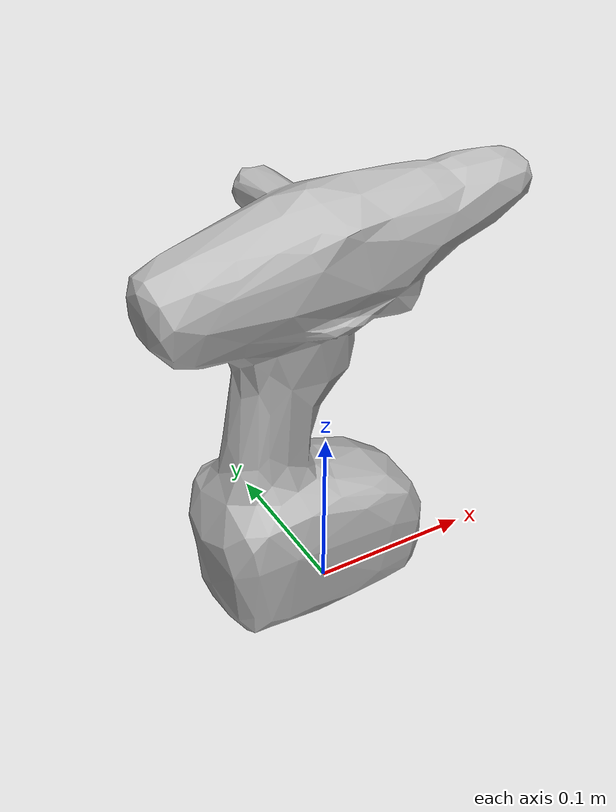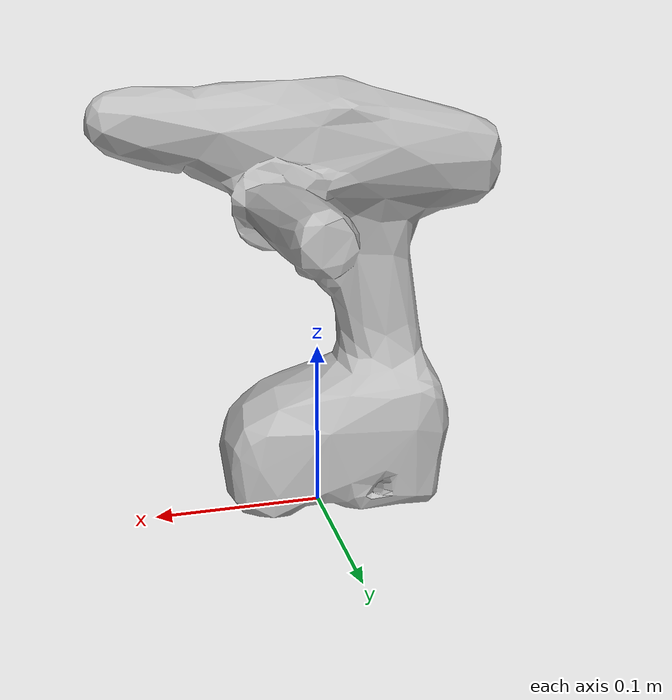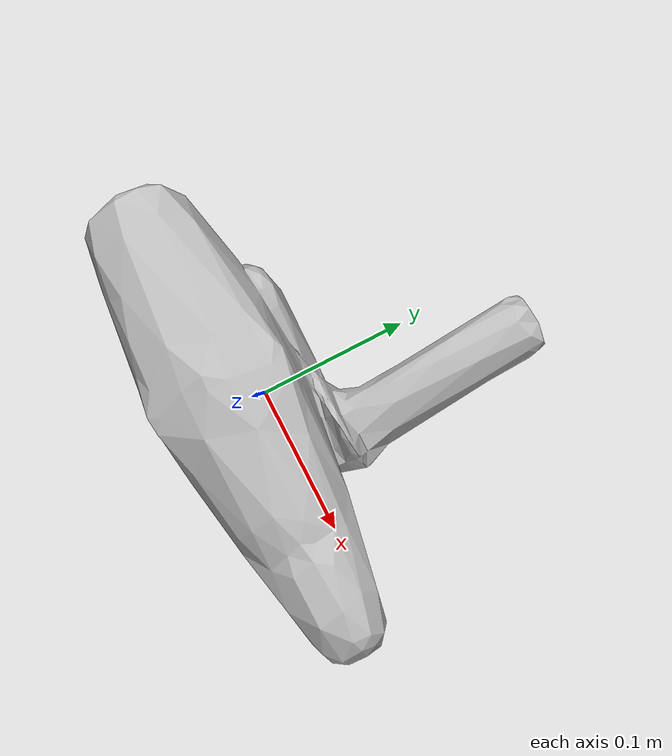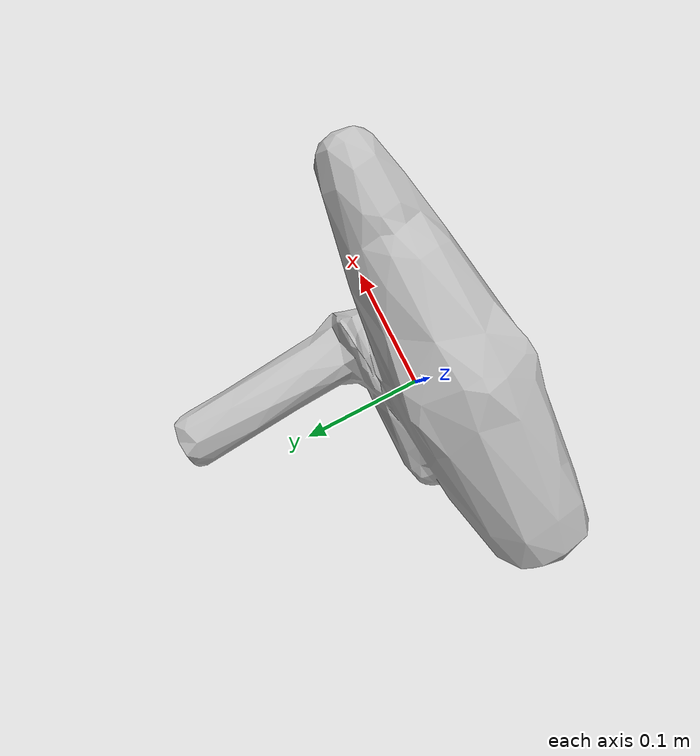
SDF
<?xml version="1.0" ?>
<sdf version="1.5">
  <world name="drill">
  <model name="drill">
    <link name="drill">
      <inertial>
        <pose>-0.00637 -0.008 0.13254 0 0 0</pose>
        <inertia>
          <!-- Before rotation -90 -->
          <iyy>0.01331127</iyy>
          <ixy>0.00030365</ixy>
          <iyz>0.00034148</iyz>
          <ixx>0.01157659</ixx>
          <ixz>-0.00088073</ixz>
          <izz>0.00378028</izz>
        </inertia>
        <mass>0.2</mass>
      </inertial>
      <collision name="collision">
        <pose>0 0 -0.09 0 0 -1.570796</pose>
        <geometry>
          <mesh>
            <uri>meshes/cordless_drill.stl</uri>
          </mesh>
        </geometry>
        <surface>
          <contact>
            <ode>
              <max_vel>0.1</max_vel>
              <min_depth>0.001</min_depth>
            </ode>
          </contact>
        </surface>
      </collision>
      <visual name="visual">
        <pose>0 0 -0.09 0 0 -1.570796</pose>
        <geometry>
          <mesh>
            <uri>meshes/cordless_drill.dae</uri>
          </mesh>
        </geometry>
      </visual>
    </link>
  </model>
  </world>
</sdf>
